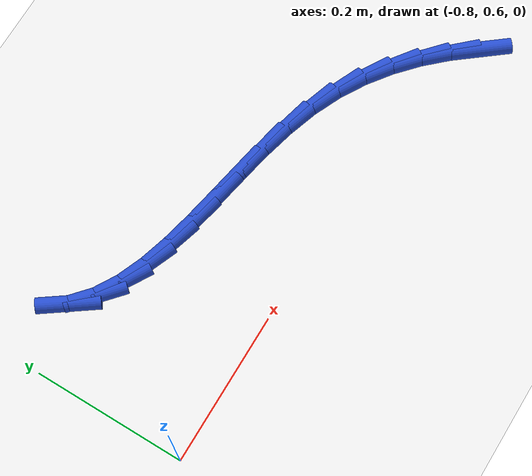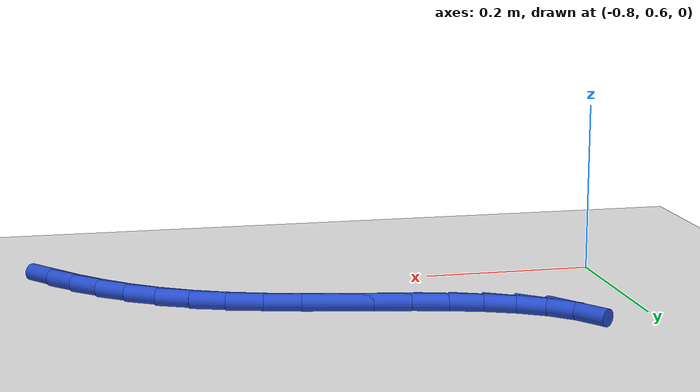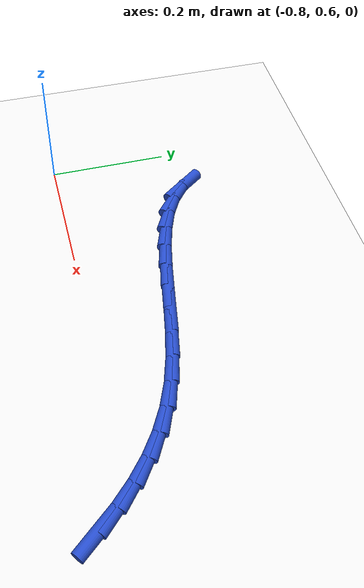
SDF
<sdf version="1.6">
 <world name="default">
  <model name="ground_plane">
   <static>1</static>
   <link name="link">
    <collision name="collision">
     <geometry><plane><normal>0 0 1</normal><size>100 100</size></plane></geometry>
     <surface><friction><ode><mu>100</mu><mu2>50</mu2></ode></friction></surface>
    </collision>
    <visual name="visual">
     <cast_shadows>0</cast_shadows>
     <geometry><plane><normal>0 0 1</normal><size>100 100</size></plane></geometry>
     <material>
      <script><uri>file://media/materials/scripts/gazebo.material</uri><name>Gazebo/WhiteGlow</name></script>
     </material>
    </visual>
   </link>
  </model>
  <model name="line">
   <link name="link_15">
    <pose>-0.16279680848872158 0.551305471885987 0.01 0 1.57 -0.902427134974382</pose>
    <collision name="collision">
     <geometry><cylinder><radius>0.01</radius><length>0.08</length></cylinder></geometry>
    </collision>
    <visual name="visual">
     <material>
      <script><name>Gazebo/Blue</name><uri>file://media/materials/scripts/gazebo.material</uri></script>
     </material>
     <geometry><cylinder><radius>0.01</radius><length>0.08</length></cylinder></geometry>
    </visual>
   </link>
   <link name="link_16">
    <pose>-0.18689034475736666 0.5818189458881652 0.01 0 1.57 -0.8211102158897862</pose>
    <collision name="collision">
     <geometry><cylinder><radius>0.01</radius><length>0.08</length></cylinder></geometry>
    </collision>
    <visual name="visual">
     <material>
      <script><name>Gazebo/Blue</name><uri>file://media/materials/scripts/gazebo.material</uri></script>
     </material>
     <geometry><cylinder><radius>0.01</radius><length>0.08</length></cylinder></geometry>
    </visual>
   </link>
   <link name="link_17">
    <pose>-0.21319606801234806 0.6100739743246096 0.01 0 1.57 -0.7312100225144185</pose>
    <collision name="collision">
     <geometry><cylinder><radius>0.01</radius><length>0.08</length></cylinder></geometry>
    </collision>
    <visual name="visual">
     <material>
      <script><name>Gazebo/Blue</name><uri>file://media/materials/scripts/gazebo.material</uri></script>
     </material>
     <geometry><cylinder><radius>0.01</radius><length>0.08</length></cylinder></geometry>
    </visual>
   </link>
   <link name="link_18">
    <pose>-0.24182962600173127 0.6357611104125811 0.01 0 1.57 -0.6331665235282508</pose>
    <collision name="collision">
     <geometry><cylinder><radius>0.01</radius><length>0.08</length></cylinder></geometry>
    </collision>
    <visual name="visual">
     <material>
      <script><name>Gazebo/Blue</name><uri>file://media/materials/scripts/gazebo.material</uri></script>
     </material>
     <geometry><cylinder><radius>0.01</radius><length>0.08</length></cylinder></geometry>
    </visual>
   </link>
   <link name="link_19">
    <pose>-0.27290666647358175 0.6585709073693404 0.01 0 1.57 -0.5281168473240714</pose>
    <collision name="collision">
     <geometry><cylinder><radius>0.01</radius><length>0.08</length></cylinder></geometry>
    </collision>
    <visual name="visual">
     <material>
      <script><name>Gazebo/Blue</name><uri>file://media/materials/scripts/gazebo.material</uri></script>
     </material>
     <geometry><cylinder><radius>0.01</radius><length>0.08</length></cylinder></geometry>
    </visual>
   </link>
   <link name="link_20">
    <pose>-0.3065428371759651 0.6781939184121484 0.01 0 1.57 -0.41812735835088943</pose>
    <collision name="collision">
     <geometry><cylinder><radius>0.01</radius><length>0.08</length></cylinder></geometry>
    </collision>
    <visual name="visual">
     <material>
      <script><name>Gazebo/Blue</name><uri>file://media/materials/scripts/gazebo.material</uri></script>
     </material>
     <geometry><cylinder><radius>0.01</radius><length>0.08</length></cylinder></geometry>
    </visual>
   </link>
   <link name="link_21">
    <pose>-0.3428496800243628 0.694326077023281 0.01 0 1.57 -0.317876370933119</pose>
    <collision name="collision">
     <geometry><cylinder><radius>0.01</radius><length>0.08</length></cylinder></geometry>
    </collision>
    <visual name="visual">
     <material>
      <script><name>Gazebo/Blue</name><uri>file://media/materials/scripts/gazebo.material</uri></script>
     </material>
     <geometry><cylinder><radius>0.01</radius><length>0.08</length></cylinder></geometry>
    </visual>
   </link>
   <link name="link_22">
    <pose>-0.381618871149801 0.7070824674064984 0.01 0 1.57 -0.2470209636867362</pose>
    <collision name="collision">
     <geometry><cylinder><radius>0.01</radius><length>0.08</length></cylinder></geometry>
    </collision>
    <visual name="visual">
     <material>
      <script><name>Gazebo/Blue</name><uri>file://media/materials/scripts/gazebo.material</uri></script>
     </material>
     <geometry><cylinder><radius>0.01</radius><length>0.08</length></cylinder></geometry>
    </visual>
   </link>
   <link name="link_23">
    <pose>-0.42209864669319136 0.7172902951458662 0.01 0 1.57 -0.20385755645582793</pose>
    <collision name="collision">
     <geometry><cylinder><radius>0.01</radius><length>0.08</length></cylinder></geometry>
    </collision>
    <visual name="visual">
     <material>
      <script><name>Gazebo/Blue</name><uri>file://media/materials/scripts/gazebo.material</uri></script>
     </material>
     <geometry><cylinder><radius>0.01</radius><length>0.08</length></cylinder></geometry>
    </visual>
   </link>
   <link name="link_24">
    <pose>-0.46348444561271684 0.7258459510222056 0.01 0 1.57 -0.18583720344513216</pose>
    <collision name="collision">
     <geometry><cylinder><radius>0.01</radius><length>0.08</length></cylinder></geometry>
    </collision>
    <visual name="visual">
     <material>
      <script><name>Gazebo/Blue</name><uri>file://media/materials/scripts/gazebo.material</uri></script>
     </material>
     <geometry><cylinder><radius>0.01</radius><length>0.08</length></cylinder></geometry>
    </visual>
   </link>
   <link name="link_25">
    <pose>-0.5049717068665608 0.7336458258163382 0.01 0 1.57 -0.1922897160899658</pose>
    <collision name="collision">
     <geometry><cylinder><radius>0.01</radius><length>0.08</length></cylinder></geometry>
    </collision>
    <visual name="visual">
     <material>
      <script><name>Gazebo/Blue</name><uri>file://media/materials/scripts/gazebo.material</uri></script>
     </material>
     <geometry><cylinder><radius>0.01</radius><length>0.08</length></cylinder></geometry>
    </visual>
   </link>
   <link name="link_26">
    <pose>-0.5457558694129059 0.7415863103090854 0.01 0 1.57 -0.22471113498920764</pose>
    <collision name="collision">
     <geometry><cylinder><radius>0.01</radius><length>0.08</length></cylinder></geometry>
    </collision>
    <visual name="visual">
     <material>
      <script><name>Gazebo/Blue</name><uri>file://media/materials/scripts/gazebo.material</uri></script>
     </material>
     <geometry><cylinder><radius>0.01</radius><length>0.08</length></cylinder></geometry>
    </visual>
   </link>
   <link name="link_27">
    <pose>-0.5850323722099358 0.7505637952812692 0.01 0 1.57 -0.2870229454255299</pose>
    <collision name="collision">
     <geometry><cylinder><radius>0.01</radius><length>0.08</length></cylinder></geometry>
    </collision>
    <visual name="visual">
     <material>
      <script><name>Gazebo/Blue</name><uri>file://media/materials/scripts/gazebo.material</uri></script>
     </material>
     <geometry><cylinder><radius>0.01</radius><length>0.08</length></cylinder></geometry>
    </visual>
   </link>
   <link name="link_28">
    <pose>-0.621996654215833 0.7614746715137105 0.01 0 1.57 -0.38563187657112863</pose>
    <collision name="collision">
     <geometry><cylinder><radius>0.01</radius><length>0.08</length></cylinder></geometry>
    </collision>
    <visual name="visual">
     <material>
      <script><name>Gazebo/Blue</name><uri>file://media/materials/scripts/gazebo.material</uri></script>
     </material>
     <geometry><cylinder><radius>0.01</radius><length>0.08</length></cylinder></geometry>
    </visual>
   </link>
   <link name="link_29">
    <pose>-0.6558441543887806 0.775215329787231 0.01 0 1.57 -0.5283213877139848</pose>
    <collision name="collision">
     <geometry><cylinder><radius>0.01</radius><length>0.08</length></cylinder></geometry>
    </collision>
    <visual name="visual">
     <material>
      <script><name>Gazebo/Blue</name><uri>file://media/materials/scripts/gazebo.material</uri></script>
     </material>
     <geometry><cylinder><radius>0.01</radius><length>0.08</length></cylinder></geometry>
    </visual>
   </link>
   <link name="link_30">
    <pose>-0.6857703116869618 0.7926821608826521 0.01 0 1.57 -0.7197097283849764</pose>
    <collision name="collision">
     <geometry><cylinder><radius>0.01</radius><length>0.08</length></cylinder></geometry>
    </collision>
    <visual name="visual">
     <material>
      <script><name>Gazebo/Blue</name><uri>file://media/materials/scripts/gazebo.material</uri></script>
     </material>
     <geometry><cylinder><radius>0.01</radius><length>0.08</length></cylinder></geometry>
    </visual>
   </link>
   <link name="link_31">
    <pose>-0.7109705650685599 0.8147715555807955 0.01 0 1.57 -0.9515350499302929</pose>
    <collision name="collision">
     <geometry><cylinder><radius>0.01</radius><length>0.08</length></cylinder></geometry>
    </collision>
    <visual name="visual">
     <material>
      <script><name>Gazebo/Blue</name><uri>file://media/materials/scripts/gazebo.material</uri></script>
     </material>
     <geometry><cylinder><radius>0.01</radius><length>0.08</length></cylinder></geometry>
    </visual>
   </link>
  </model>
 </world>
</sdf>
